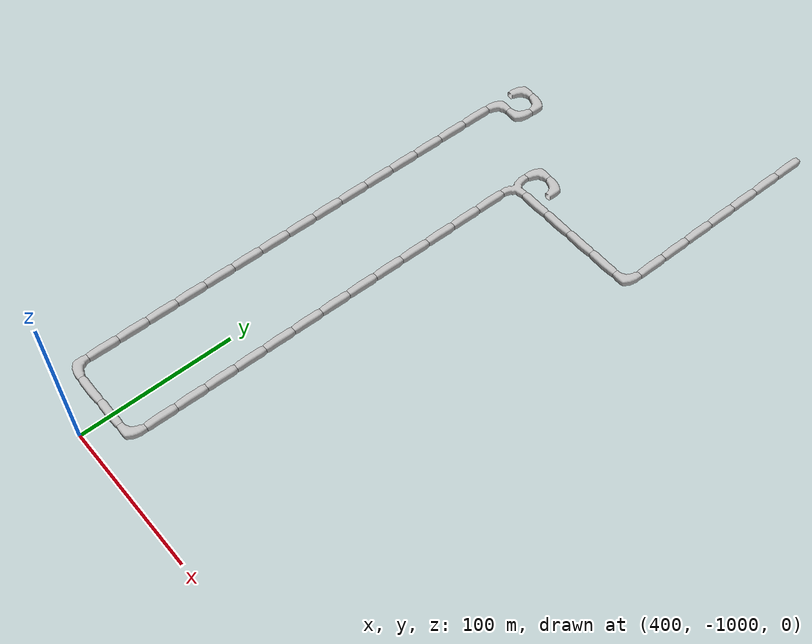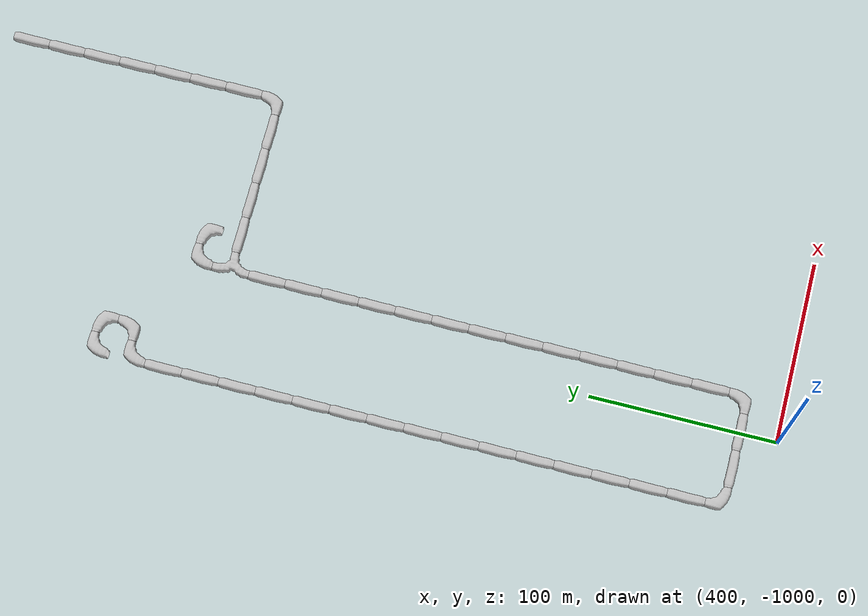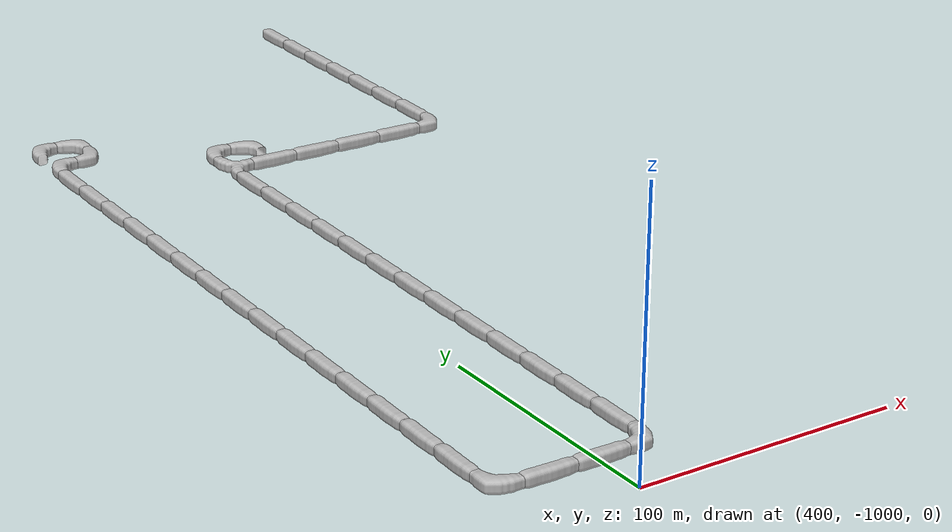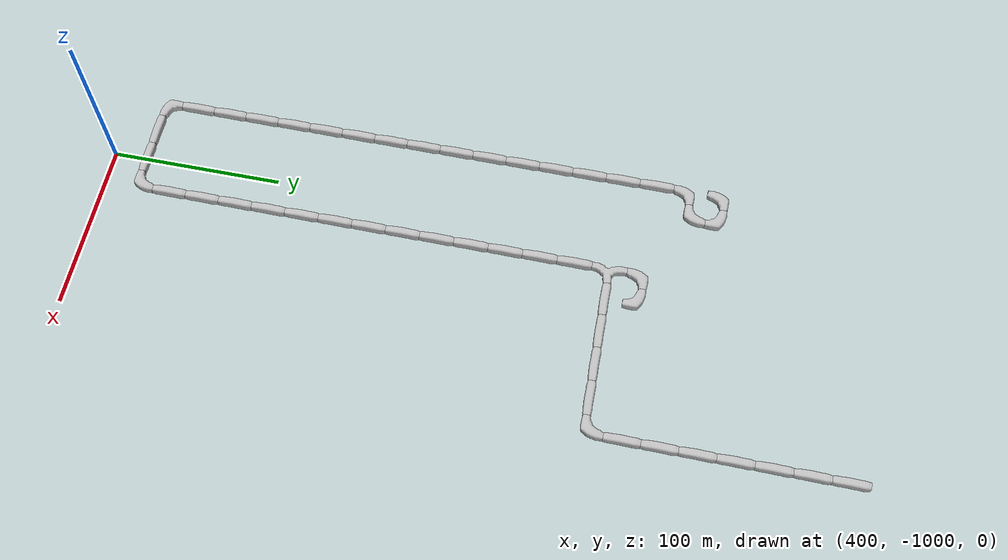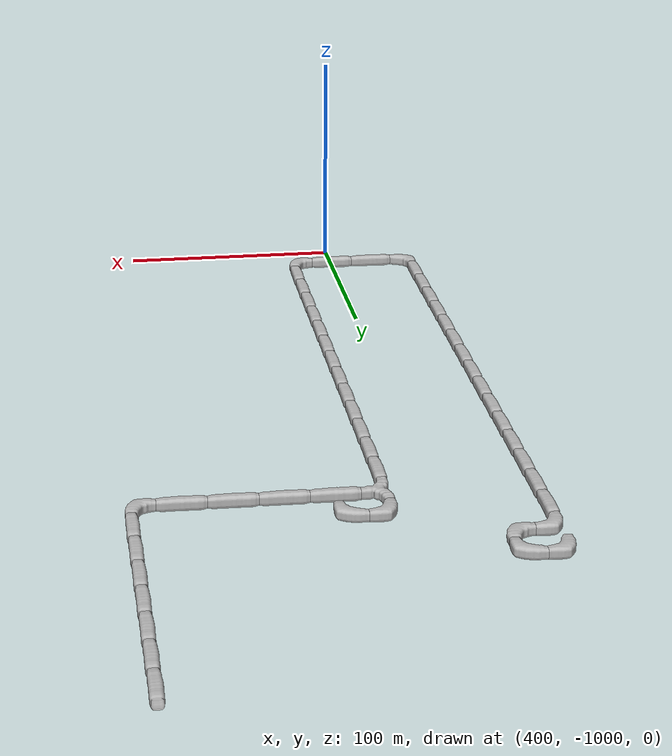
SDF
<sdf version="1.6">
 <world name="cave_16000_16">
  <include>
   <static>true</static>
   <name>cave_26_-28</name>
   <pose>520 -560 0 0 0 0.0</pose>
   <uri>model://cave_straight_20m</uri>
  </include>
  <include>
   <static>true</static>
   <name>cave_26_-29</name>
   <pose>520 -580 0 0 0 0.0</pose>
   <uri>model://cave_straight_20m</uri>
  </include>
  <include>
   <static>true</static>
   <name>cave_26_-30</name>
   <pose>520 -600 0 0 0 0.0</pose>
   <uri>model://cave_straight_20m</uri>
  </include>
  <include>
   <static>true</static>
   <name>cave_26_-31</name>
   <pose>520 -620 0 0 0 0.0</pose>
   <uri>model://cave_straight_20m</uri>
  </include>
  <include>
   <static>true</static>
   <name>cave_26_-32</name>
   <pose>520 -640 0 0 0 0.0</pose>
   <uri>model://cave_straight_20m</uri>
  </include>
  <include>
   <static>true</static>
   <name>cave_26_-33</name>
   <pose>520 -660 0 0 0 0.0</pose>
   <uri>model://cave_straight_20m</uri>
  </include>
  <include>
   <static>true</static>
   <name>cave_26_-34</name>
   <pose>520 -680 0 0 0 0.0</pose>
   <uri>model://cave_straight_20m</uri>
  </include>
  <include>
   <static>true</static>
   <name>cave_26_-35</name>
   <pose>520 -700 0 0 0 1.5707963267948966</pose>
   <uri>model://cave_L_20m</uri>
  </include>
  <include>
   <static>true</static>
   <name>cave_25_-35</name>
   <pose>500 -700 0 0 0 1.5707963267948966</pose>
   <uri>model://cave_straight_20m</uri>
  </include>
  <include>
   <static>true</static>
   <name>cave_24_-35</name>
   <pose>480 -700 0 0 0 1.5707963267948966</pose>
   <uri>model://cave_straight_20m</uri>
  </include>
  <include>
   <static>true</static>
   <name>cave_23_-35</name>
   <pose>460 -700 0 0 0 1.5707963267948966</pose>
   <uri>model://cave_straight_20m</uri>
  </include>
  <include>
   <static>true</static>
   <name>cave_22_-35</name>
   <pose>440 -700 0 0 0 1.5707963267948966</pose>
   <uri>model://cave_straight_20m</uri>
  </include>
  <include>
   <static>true</static>
   <name>cave_21_-35</name>
   <pose>420 -700 0 0 0 -1.5707963267948966</pose>
   <uri>model://cave_3way_20m</uri>
  </include>
  <include>
   <static>true</static>
   <name>cave_21_-36</name>
   <pose>420 -720 0 0 0 0.0</pose>
   <uri>model://cave_straight_20m</uri>
  </include>
  <include>
   <static>true</static>
   <name>cave_21_-37</name>
   <pose>420 -740 0 0 0 0.0</pose>
   <uri>model://cave_straight_20m</uri>
  </include>
  <include>
   <static>true</static>
   <name>cave_21_-38</name>
   <pose>420 -760 0 0 0 0.0</pose>
   <uri>model://cave_straight_20m</uri>
  </include>
  <include>
   <static>true</static>
   <name>cave_21_-39</name>
   <pose>420 -780 0 0 0 0.0</pose>
   <uri>model://cave_straight_20m</uri>
  </include>
  <include>
   <static>true</static>
   <name>cave_21_-40</name>
   <pose>420 -800 0 0 0 0.0</pose>
   <uri>model://cave_straight_20m</uri>
  </include>
  <include>
   <static>true</static>
   <name>cave_21_-41</name>
   <pose>420 -820 0 0 0 0.0</pose>
   <uri>model://cave_straight_20m</uri>
  </include>
  <include>
   <static>true</static>
   <name>cave_21_-42</name>
   <pose>420 -840 0 0 0 0.0</pose>
   <uri>model://cave_straight_20m</uri>
  </include>
  <include>
   <static>true</static>
   <name>cave_21_-43</name>
   <pose>420 -860 0 0 0 0.0</pose>
   <uri>model://cave_straight_20m</uri>
  </include>
  <include>
   <static>true</static>
   <name>cave_21_-44</name>
   <pose>420 -880 0 0 0 0.0</pose>
   <uri>model://cave_straight_20m</uri>
  </include>
  <include>
   <static>true</static>
   <name>cave_21_-45</name>
   <pose>420 -900 0 0 0 0.0</pose>
   <uri>model://cave_straight_20m</uri>
  </include>
  <include>
   <static>true</static>
   <name>cave_21_-46</name>
   <pose>420 -920 0 0 0 0.0</pose>
   <uri>model://cave_straight_20m</uri>
  </include>
  <include>
   <static>true</static>
   <name>cave_21_-47</name>
   <pose>420 -940 0 0 0 0.0</pose>
   <uri>model://cave_straight_20m</uri>
  </include>
  <include>
   <static>true</static>
   <name>cave_21_-48</name>
   <pose>420 -960 0 0 0 0.0</pose>
   <uri>model://cave_straight_20m</uri>
  </include>
  <include>
   <static>true</static>
   <name>cave_21_-49</name>
   <pose>420 -980 0 0 0 1.5707963267948966</pose>
   <uri>model://cave_L_20m</uri>
  </include>
  <include>
   <static>true</static>
   <name>cave_20_-49</name>
   <pose>400 -980 0 0 0 1.5707963267948966</pose>
   <uri>model://cave_straight_20m</uri>
  </include>
  <include>
   <static>true</static>
   <name>cave_19_-49</name>
   <pose>380 -980 0 0 0 1.5707963267948966</pose>
   <uri>model://cave_straight_20m</uri>
  </include>
  <include>
   <static>true</static>
   <name>cave_18_-49</name>
   <pose>360 -980 0 0 0 0.0</pose>
   <uri>model://cave_L_20m</uri>
  </include>
  <include>
   <static>true</static>
   <name>cave_18_-48</name>
   <pose>360 -960 0 0 0 0.0</pose>
   <uri>model://cave_straight_20m</uri>
  </include>
  <include>
   <static>true</static>
   <name>cave_18_-47</name>
   <pose>360 -940 0 0 0 0.0</pose>
   <uri>model://cave_straight_20m</uri>
  </include>
  <include>
   <static>true</static>
   <name>cave_18_-46</name>
   <pose>360 -920 0 0 0 0.0</pose>
   <uri>model://cave_straight_20m</uri>
  </include>
  <include>
   <static>true</static>
   <name>cave_18_-45</name>
   <pose>360 -900 0 0 0 0.0</pose>
   <uri>model://cave_straight_20m</uri>
  </include>
  <include>
   <static>true</static>
   <name>cave_18_-44</name>
   <pose>360 -880 0 0 0 0.0</pose>
   <uri>model://cave_straight_20m</uri>
  </include>
  <include>
   <static>true</static>
   <name>cave_18_-43</name>
   <pose>360 -860 0 0 0 0.0</pose>
   <uri>model://cave_straight_20m</uri>
  </include>
  <include>
   <static>true</static>
   <name>cave_18_-42</name>
   <pose>360 -840 0 0 0 0.0</pose>
   <uri>model://cave_straight_20m</uri>
  </include>
  <include>
   <static>true</static>
   <name>cave_18_-41</name>
   <pose>360 -820 0 0 0 0.0</pose>
   <uri>model://cave_straight_20m</uri>
  </include>
  <include>
   <static>true</static>
   <name>cave_18_-40</name>
   <pose>360 -800 0 0 0 0.0</pose>
   <uri>model://cave_straight_20m</uri>
  </include>
  <include>
   <static>true</static>
   <name>cave_18_-39</name>
   <pose>360 -780 0 0 0 0.0</pose>
   <uri>model://cave_straight_20m</uri>
  </include>
  <include>
   <static>true</static>
   <name>cave_18_-38</name>
   <pose>360 -760 0 0 0 0.0</pose>
   <uri>model://cave_straight_20m</uri>
  </include>
  <include>
   <static>true</static>
   <name>cave_18_-37</name>
   <pose>360 -740 0 0 0 0.0</pose>
   <uri>model://cave_straight_20m</uri>
  </include>
  <include>
   <static>true</static>
   <name>cave_18_-36</name>
   <pose>360 -720 0 0 0 0.0</pose>
   <uri>model://cave_straight_20m</uri>
  </include>
  <include>
   <static>true</static>
   <name>cave_18_-35</name>
   <pose>360 -700 0 0 0 0.0</pose>
   <uri>model://cave_straight_20m</uri>
  </include>
  <include>
   <static>true</static>
   <name>cave_18_-34</name>
   <pose>360 -680 0 0 0 0.0</pose>
   <uri>model://cave_straight_20m</uri>
  </include>
  <include>
   <static>true</static>
   <name>cave_18_-33</name>
   <pose>360 -660 0 0 0 -1.5707963267948966</pose>
   <uri>model://cave_L_20m</uri>
  </include>
  <include>
   <static>true</static>
   <name>cave_19_-33</name>
   <pose>380 -660 0 0 0 1.5707963267948966</pose>
   <uri>model://cave_L_20m</uri>
  </include>
  <include>
   <static>true</static>
   <name>cave_19_-32</name>
   <pose>380 -640 0 0 0 3.141592653589793</pose>
   <uri>model://cave_L_20m</uri>
  </include>
  <include>
   <static>true</static>
   <name>cave_18_-32</name>
   <pose>360 -640 0 0 0 -1.5707963267948966</pose>
   <uri>model://cave_L_20m</uri>
  </include>
  <include>
   <static>true</static>
   <name>cave_21_-34</name>
   <pose>420 -680 0 0 0 -1.5707963267948966</pose>
   <uri>model://cave_L_20m</uri>
  </include>
  <include>
   <static>true</static>
   <name>cave_22_-34</name>
   <pose>440 -680 0 0 0 3.141592653589793</pose>
   <uri>model://cave_L_20m</uri>
  </include>
 </world>
</sdf>
